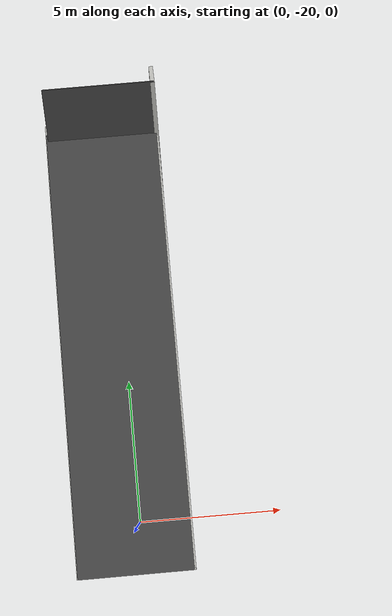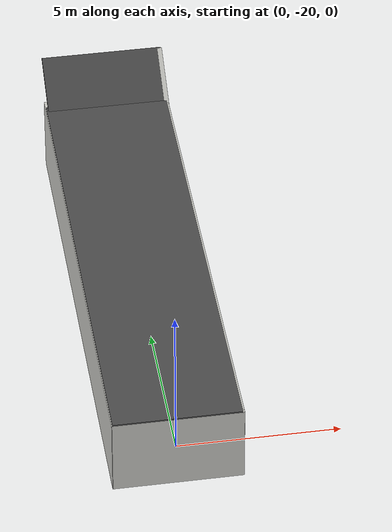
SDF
<sdf version="1.6">
 <world name="default">
  <model name="ground_plane">
   <static>1</static>
   <link name="link">
    <collision name="collision">
     <geometry><plane><normal>0 0 1</normal><size>100 100</size></plane></geometry>
     <surface><friction><ode><mu>100</mu><mu2>50</mu2></ode></friction></surface>
    </collision>
    <visual name="visual">
     <cast_shadows>0</cast_shadows>
     <geometry><plane><normal>0 0 1</normal><size>100 100</size></plane></geometry>
     <material>
      <script><uri>file://media/materials/scripts/gazebo.material</uri><name>Gazebo/Grey</name></script>
     </material>
    </visual>
   </link>
  </model>
  <model name="Untitled_1">
   <link name="Wall_6">
    <pose>-0.52874 -7.68161 0 0 -0 0</pose>
    <inertial>
     <inertia><ixx>0</ixx><ixy>0</ixy><ixz>0</ixz><iyy>0</iyy><iyz>0</iyz><izz>0</izz></inertia>
     <mass>0</mass>
    </inertial>
    <visual name="Wall_6_Visual">
     <pose>0 0 1.25 0 -0 0</pose>
     <geometry><box><size>3.91776 0.15 2.5</size></box></geometry>
     <material>
      <script><uri>file://media/materials/scripts/gazebo.material</uri><name>Gazebo/CeilingTiled</name></script>
      <ambient>1 1 1 1</ambient>
      <shader type="pixel"/>
     </material>
     <meta><layer>0</layer></meta>
    </visual>
    <collision name="Wall_6_Collision">
     <pose>0 0 1.25 0 -0 0</pose>
     <geometry><box><size>3.91776 0.15 2.5</size></box></geometry>
     <surface>
      <friction>
       <ode><mu>1</mu><mu2>1</mu2><fdir1>0 0 0</fdir1><slip1>0</slip1><slip2>0</slip2></ode>
       <torsional>
        <coefficient>1</coefficient>
        <patch_radius>0</patch_radius>
        <surface_radius>0</surface_radius>
        <use_patch_radius>1</use_patch_radius>
        <ode><slip>0</slip></ode>
       </torsional>
      </friction>
      <bounce><restitution_coefficient>0</restitution_coefficient><threshold>1e+06</threshold></bounce>
      <contact>
       <collide_without_contact>0</collide_without_contact>
       <collide_without_contact_bitmask>1</collide_without_contact_bitmask>
       <collide_bitmask>1</collide_bitmask>
       <ode>
        <soft_cfm>0</soft_cfm>
        <soft_erp>0.2</soft_erp>
        <kp>1e+13</kp>
        <kd>1</kd>
        <max_vel>0.01</max_vel>
        <min_depth>0</min_depth>
       </ode>
       <bullet>
        <split_impulse>1</split_impulse>
        <split_impulse_penetration_threshold>-0.01</split_impulse_penetration_threshold>
        <soft_cfm>0</soft_cfm>
        <soft_erp>0.2</soft_erp>
        <kp>1e+13</kp>
        <kd>1</kd>
       </bullet>
      </contact>
     </surface>
    </collision>
   </link>
   <link name="Wall_7">
    <pose>1.35961 -5e-06 -0 0 -0 1.5708</pose>
    <visual name="Wall_7_Visual">
     <pose>0 0 1.25 0 -0 0</pose>
     <geometry><box><size>15.5 0.15 2.5</size></box></geometry>
     <material>
      <script><uri>file://media/materials/scripts/gazebo.material</uri><name>Gazebo/CeilingTiled</name></script>
      <ambient>1 1 1 1</ambient>
      <shader type="pixel"/>
     </material>
     <meta><layer>0</layer></meta>
    </visual>
    <collision name="Wall_7_Collision">
     <pose>0 0 1.25 0 -0 0</pose>
     <geometry><box><size>15.5 0.15 2.5</size></box></geometry>
     <surface>
      <friction>
       <ode><mu>1</mu><mu2>1</mu2><fdir1>0 0 0</fdir1><slip1>0</slip1><slip2>0</slip2></ode>
       <torsional>
        <coefficient>1</coefficient>
        <patch_radius>0</patch_radius>
        <surface_radius>0</surface_radius>
        <use_patch_radius>1</use_patch_radius>
        <ode><slip>0</slip></ode>
       </torsional>
      </friction>
      <bounce><restitution_coefficient>0</restitution_coefficient><threshold>1e+06</threshold></bounce>
      <contact>
       <collide_without_contact>0</collide_without_contact>
       <collide_without_contact_bitmask>1</collide_without_contact_bitmask>
       <collide_bitmask>1</collide_bitmask>
       <ode>
        <soft_cfm>0</soft_cfm>
        <soft_erp>0.2</soft_erp>
        <kp>1e+13</kp>
        <kd>1</kd>
        <max_vel>0.01</max_vel>
        <min_depth>0</min_depth>
       </ode>
       <bullet>
        <split_impulse>1</split_impulse>
        <split_impulse_penetration_threshold>-0.01</split_impulse_penetration_threshold>
        <soft_cfm>0</soft_cfm>
        <soft_erp>0.2</soft_erp>
        <kp>1e+13</kp>
        <kd>1</kd>
       </bullet>
      </contact>
     </surface>
    </collision>
   </link>
   <link name="Wall_9">
    <pose>-2.425 0 0 0 -0 1.5708</pose>
    <visual name="Wall_9_Visual">
     <pose>0 0 1.25 0 -0 0</pose>
     <geometry><box><size>15.5 0.15 2.5</size></box></geometry>
     <material>
      <script><uri>file://media/materials/scripts/gazebo.material</uri><name>Gazebo/CeilingTiled</name></script>
      <ambient>1 1 1 1</ambient>
      <shader type="pixel"/>
     </material>
     <meta><layer>0</layer></meta>
    </visual>
    <collision name="Wall_9_Collision">
     <pose>0 0 1.25 0 -0 0</pose>
     <geometry><box><size>15.5 0.15 2.5</size></box></geometry>
     <surface>
      <friction>
       <ode><mu>1</mu><mu2>1</mu2><fdir1>0 0 0</fdir1><slip1>0</slip1><slip2>0</slip2></ode>
       <torsional>
        <coefficient>1</coefficient>
        <patch_radius>0</patch_radius>
        <surface_radius>0</surface_radius>
        <use_patch_radius>1</use_patch_radius>
        <ode><slip>0</slip></ode>
       </torsional>
      </friction>
      <bounce><restitution_coefficient>0</restitution_coefficient><threshold>1e+06</threshold></bounce>
      <contact>
       <collide_without_contact>0</collide_without_contact>
       <collide_without_contact_bitmask>1</collide_without_contact_bitmask>
       <collide_bitmask>1</collide_bitmask>
       <ode>
        <soft_cfm>0</soft_cfm>
        <soft_erp>0.2</soft_erp>
        <kp>1e+13</kp>
        <kd>1</kd>
        <max_vel>0.01</max_vel>
        <min_depth>0</min_depth>
       </ode>
       <bullet>
        <split_impulse>1</split_impulse>
        <split_impulse_penetration_threshold>-0.01</split_impulse_penetration_threshold>
        <soft_cfm>0</soft_cfm>
        <soft_erp>0.2</soft_erp>
        <kp>1e+13</kp>
        <kd>1</kd>
       </bullet>
      </contact>
     </surface>
    </collision>
   </link>
   <static>1</static>
   <pose>0.386993 -13.7674 0 0 -0 0</pose>
  </model>
  <model name="unit_box_0_static_clone">
   <link name="link">
    <inertial>
     <mass>1</mass>
     <inertia>
      <ixx>0.166667</ixx>
      <ixy>0</ixy>
      <ixz>0</ixz>
      <iyy>0.166667</iyy>
      <iyz>0</iyz>
      <izz>0.166667</izz>
     </inertia>
    </inertial>
    <visual name="visual">
     <geometry><box><size>0.092218 3.57895 0.407783</size></box></geometry>
     <material>
      <script><name>Gazebo/Grey</name><uri>file://media/materials/scripts/gazebo.material</uri></script>
      <shader type="pixel"/>
     </material>
    </visual>
    <collision name="collision">
     <geometry><box><size>0.092218 3.57895 0.407783</size></box></geometry>
     <surface>
      <friction>
       <ode><mu>1</mu><mu2>1</mu2><fdir1>0 0 0</fdir1><slip1>0</slip1><slip2>0</slip2></ode>
       <torsional>
        <coefficient>1</coefficient>
        <patch_radius>0</patch_radius>
        <surface_radius>0</surface_radius>
        <use_patch_radius>1</use_patch_radius>
        <ode><slip>0</slip></ode>
       </torsional>
      </friction>
      <bounce><restitution_coefficient>0</restitution_coefficient><threshold>1e+06</threshold></bounce>
      <contact>
       <collide_without_contact>0</collide_without_contact>
       <collide_without_contact_bitmask>1</collide_without_contact_bitmask>
       <collide_bitmask>1</collide_bitmask>
       <ode>
        <soft_cfm>0</soft_cfm>
        <soft_erp>0.2</soft_erp>
        <kp>1e+13</kp>
        <kd>1</kd>
        <max_vel>0.01</max_vel>
        <min_depth>0</min_depth>
       </ode>
       <bullet>
        <split_impulse>1</split_impulse>
        <split_impulse_penetration_threshold>-0.01</split_impulse_penetration_threshold>
        <soft_cfm>0</soft_cfm>
        <soft_erp>0.2</soft_erp>
        <kp>1e+13</kp>
        <kd>1</kd>
       </bullet>
      </contact>
     </surface>
    </collision>
   </link>
   <static>1</static>
   <pose>-0.122546 -5.98751 0.220308 0 0 -1.5707</pose>
  </model>
  <model name="Untitled_1_0_clone_0_clone">
   <pose>0.09083 -5.76541 0.077716 0 -0.606196 1.5707</pose>
   <link name="Wall_16">
    <collision name="Wall_16_Collision">
     <geometry><box><size>5 0.15 2.5</size></box></geometry>
     <pose>0 0 1.25 0 -0 0</pose>
    </collision>
    <visual name="Wall_16_Visual">
     <pose>0 0 1.25 0 -0 0</pose>
     <geometry><box><size>5 0.15 2.5</size></box></geometry>
     <material>
      <script><uri>file://media/materials/scripts/gazebo.material</uri><name>Gazebo/CeilingTiled</name></script>
      <ambient>1 1 1 1</ambient>
     </material>
     <meta><layer>0</layer></meta>
    </visual>
    <pose>0 -1.66958 0 0 -0 0</pose>
   </link>
   <static>1</static>
  </model>
  <model name="unit_box_0_static_clone_clone">
   <link name="link">
    <inertial>
     <mass>1</mass>
     <inertia>
      <ixx>0.166667</ixx>
      <ixy>0</ixy>
      <ixz>0</ixz>
      <iyy>0.166667</iyy>
      <iyz>0</iyz>
      <izz>0.166667</izz>
     </inertia>
    </inertial>
    <visual name="visual">
     <geometry><box><size>0.092218 3.57895 0.407783</size></box></geometry>
     <material>
      <script><name>Gazebo/Grey</name><uri>file://media/materials/scripts/gazebo.material</uri></script>
      <shader type="pixel"/>
     </material>
    </visual>
    <collision name="collision">
     <geometry><box><size>0.092218 3.57895 0.407783</size></box></geometry>
     <surface>
      <friction>
       <ode><mu>1</mu><mu2>1</mu2><fdir1>0 0 0</fdir1><slip1>0</slip1><slip2>0</slip2></ode>
       <torsional>
        <coefficient>1</coefficient>
        <patch_radius>0</patch_radius>
        <surface_radius>0</surface_radius>
        <use_patch_radius>1</use_patch_radius>
        <ode><slip>0</slip></ode>
       </torsional>
      </friction>
      <bounce><restitution_coefficient>0</restitution_coefficient><threshold>1e+06</threshold></bounce>
      <contact>
       <collide_without_contact>0</collide_without_contact>
       <collide_without_contact_bitmask>1</collide_without_contact_bitmask>
       <collide_bitmask>1</collide_bitmask>
       <ode>
        <soft_cfm>0</soft_cfm>
        <soft_erp>0.2</soft_erp>
        <kp>1e+13</kp>
        <kd>1</kd>
        <max_vel>0.01</max_vel>
        <min_depth>0</min_depth>
       </ode>
       <bullet>
        <split_impulse>1</split_impulse>
        <split_impulse_penetration_threshold>-0.01</split_impulse_penetration_threshold>
        <soft_cfm>0</soft_cfm>
        <soft_erp>0.2</soft_erp>
        <kp>1e+13</kp>
        <kd>1</kd>
       </bullet>
      </contact>
     </surface>
    </collision>
   </link>
   <static>1</static>
   <pose>-0.158179 -6.25155 0.016469 0 0 -1.5707</pose>
  </model>
  <model name="asphalt_plane_floor">
   <link name="link">
    <inertial>
     <inertia><ixx>0</ixx><ixy>0</ixy><ixz>0</ixz><iyy>0</iyy><iyz>0</iyz><izz>0</izz></inertia>
     <mass>0</mass>
    </inertial>
    <pose>0.083107 -2.24648 0 0 -0 0</pose>
    <visual name="visual">
     <cast_shadows>0</cast_shadows>
     <geometry><box><size>3.84906 15.1604 0.1</size></box></geometry>
     <material>
      <script>
       <uri>model://asphalt_plane/materials/scripts</uri>
       <uri>model://asphalt_plane/materials/textures</uri>
       <name>vrc/asphalt</name>
      </script>
      <shader type="pixel"/>
     </material>
    </visual>
    <collision name="collision">
     <geometry><box><size>3.84906 15.1604 0.1</size></box></geometry>
     <surface>
      <friction>
       <ode><mu>1</mu><mu2>1</mu2><fdir1>0 0 0</fdir1><slip1>0</slip1><slip2>0</slip2></ode>
       <torsional>
        <coefficient>1</coefficient>
        <patch_radius>0</patch_radius>
        <surface_radius>0</surface_radius>
        <use_patch_radius>1</use_patch_radius>
        <ode><slip>0</slip></ode>
       </torsional>
      </friction>
      <bounce><restitution_coefficient>0</restitution_coefficient><threshold>1e+06</threshold></bounce>
      <contact>
       <collide_without_contact>0</collide_without_contact>
       <collide_without_contact_bitmask>1</collide_without_contact_bitmask>
       <collide_bitmask>1</collide_bitmask>
       <ode>
        <soft_cfm>0</soft_cfm>
        <soft_erp>0.2</soft_erp>
        <kp>1e+13</kp>
        <kd>1</kd>
        <max_vel>0.01</max_vel>
        <min_depth>0</min_depth>
       </ode>
       <bullet>
        <split_impulse>1</split_impulse>
        <split_impulse_penetration_threshold>-0.01</split_impulse_penetration_threshold>
        <soft_cfm>0</soft_cfm>
        <soft_erp>0.2</soft_erp>
        <kp>1e+13</kp>
        <kd>1</kd>
       </bullet>
      </contact>
     </surface>
    </collision>
   </link>
   <static>1</static>
   <pose>-0.246367 -11.5045 0 0 -0 0</pose>
  </model>
  <model name="asphalt_plane_floor_1">
   <link name="link">
    <inertial>
     <inertia><ixx>0</ixx><ixy>0</ixy><ixz>0</ixz><iyy>0</iyy><iyz>0</iyz><izz>0</izz></inertia>
     <mass>0</mass>
    </inertial>
    <pose>0.083107 -2.24648 0 0 -0 0</pose>
    <visual name="visual">
     <cast_shadows>0</cast_shadows>
     <geometry><box><size>3.84906 15.1604 0.1</size></box></geometry>
     <material>
      <script>
       <uri>model://asphalt_plane/materials/scripts</uri>
       <uri>model://asphalt_plane/materials/textures</uri>
       <name>vrc/asphalt</name>
      </script>
      <shader type="pixel"/>
     </material>
    </visual>
    <collision name="collision">
     <geometry><box><size>3.84906 15.1604 0.1</size></box></geometry>
     <surface>
      <friction>
       <ode><mu>1</mu><mu2>1</mu2><fdir1>0 0 0</fdir1><slip1>0</slip1><slip2>0</slip2></ode>
       <torsional>
        <coefficient>1</coefficient>
        <patch_radius>0</patch_radius>
        <surface_radius>0</surface_radius>
        <use_patch_radius>1</use_patch_radius>
        <ode><slip>0</slip></ode>
       </torsional>
      </friction>
      <bounce><restitution_coefficient>0</restitution_coefficient><threshold>1e+06</threshold></bounce>
      <contact>
       <collide_without_contact>0</collide_without_contact>
       <collide_without_contact_bitmask>1</collide_without_contact_bitmask>
       <collide_bitmask>1</collide_bitmask>
       <ode>
        <soft_cfm>0</soft_cfm>
        <soft_erp>0.2</soft_erp>
        <kp>1e+13</kp>
        <kd>1</kd>
        <max_vel>0.01</max_vel>
        <min_depth>0</min_depth>
       </ode>
       <bullet>
        <split_impulse>1</split_impulse>
        <split_impulse_penetration_threshold>-0.01</split_impulse_penetration_threshold>
        <soft_cfm>0</soft_cfm>
        <soft_erp>0.2</soft_erp>
        <kp>1e+13</kp>
        <kd>1</kd>
       </bullet>
      </contact>
     </surface>
    </collision>
   </link>
   <static>1</static>
   <pose>-0.244582 -11.696 2.49093 0 -0 0</pose>
  </model>
  <model name="asphalt_plane_floor_2">
   <link name="link">
    <inertial>
     <inertia><ixx>0</ixx><ixy>0</ixy><ixz>0</ixz><iyy>0</iyy><iyz>0</iyz><izz>0</izz></inertia>
     <mass>0</mass>
    </inertial>
    <pose>2.08172 0.863852 -0.816601 0.610181 -0 0</pose>
    <visual name="visual">
     <cast_shadows>0</cast_shadows>
     <geometry><box><size>3.84906 1.87949 0.1</size></box></geometry>
     <material>
      <script>
       <uri>model://asphalt_plane/materials/scripts</uri>
       <uri>model://asphalt_plane/materials/textures</uri>
       <name>vrc/asphalt</name>
      </script>
      <shader type="pixel"/>
     </material>
    </visual>
    <collision name="collision">
     <geometry><box><size>3.84906 1.87949 0.1</size></box></geometry>
     <surface>
      <friction>
       <ode><mu>1</mu><mu2>1</mu2><fdir1>0 0 0</fdir1><slip1>0</slip1><slip2>0</slip2></ode>
       <torsional>
        <coefficient>1</coefficient>
        <patch_radius>0</patch_radius>
        <surface_radius>0</surface_radius>
        <use_patch_radius>1</use_patch_radius>
        <ode><slip>0</slip></ode>
       </torsional>
      </friction>
      <bounce><restitution_coefficient>0</restitution_coefficient><threshold>1e+06</threshold></bounce>
      <contact>
       <collide_without_contact>0</collide_without_contact>
       <collide_without_contact_bitmask>1</collide_without_contact_bitmask>
       <collide_bitmask>1</collide_bitmask>
       <ode>
        <soft_cfm>0</soft_cfm>
        <soft_erp>0.2</soft_erp>
        <kp>1e+13</kp>
        <kd>1</kd>
        <max_vel>0.01</max_vel>
        <min_depth>0</min_depth>
       </ode>
       <bullet>
        <split_impulse>1</split_impulse>
        <split_impulse_penetration_threshold>-0.01</split_impulse_penetration_threshold>
        <soft_cfm>0</soft_cfm>
        <soft_erp>0.2</soft_erp>
        <kp>1e+13</kp>
        <kd>1</kd>
       </bullet>
      </contact>
     </surface>
    </collision>
   </link>
   <static>1</static>
   <pose>-2.19317 -6.71562 3.80973 0 -0 0</pose>
  </model>
 </world>
</sdf>
